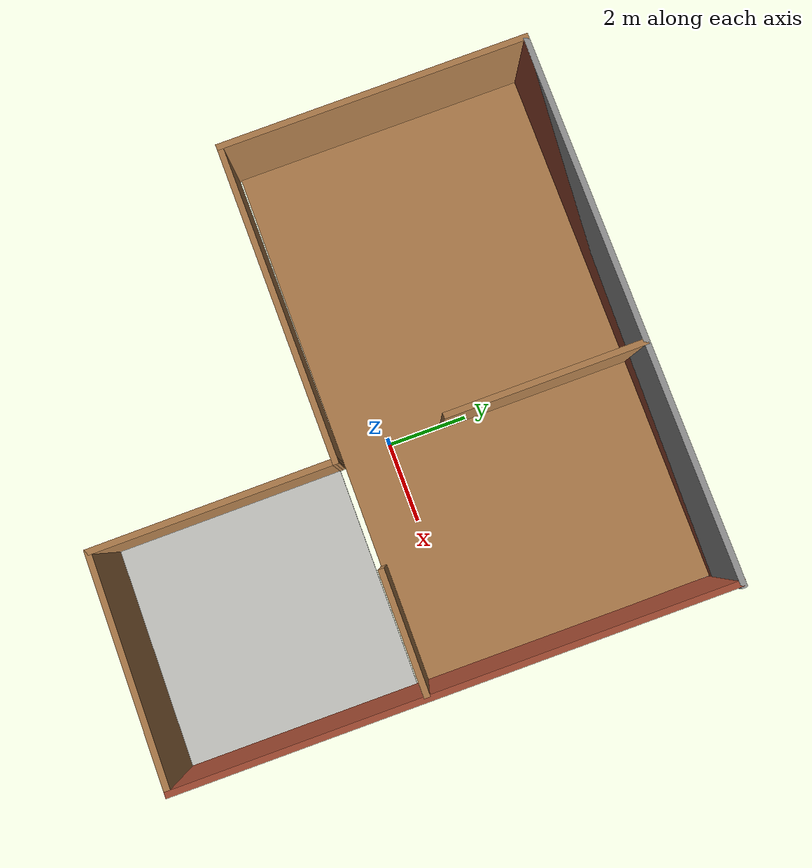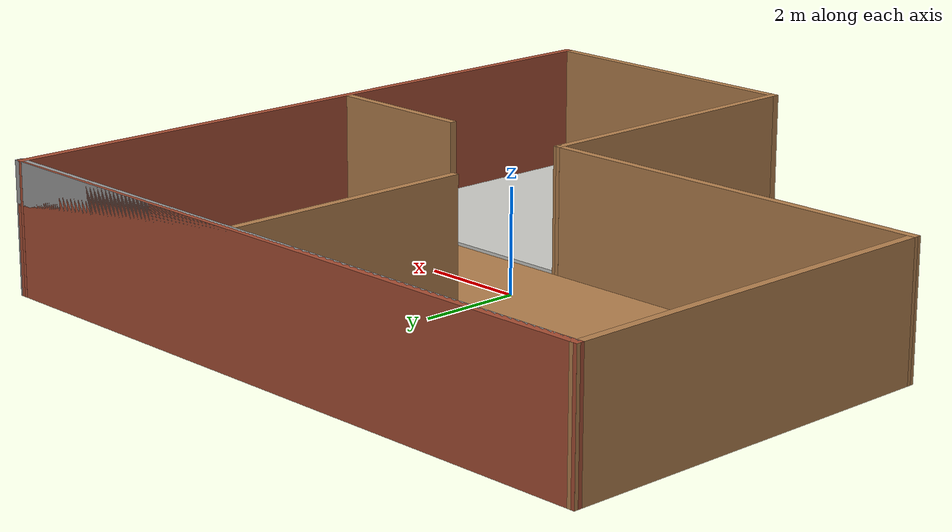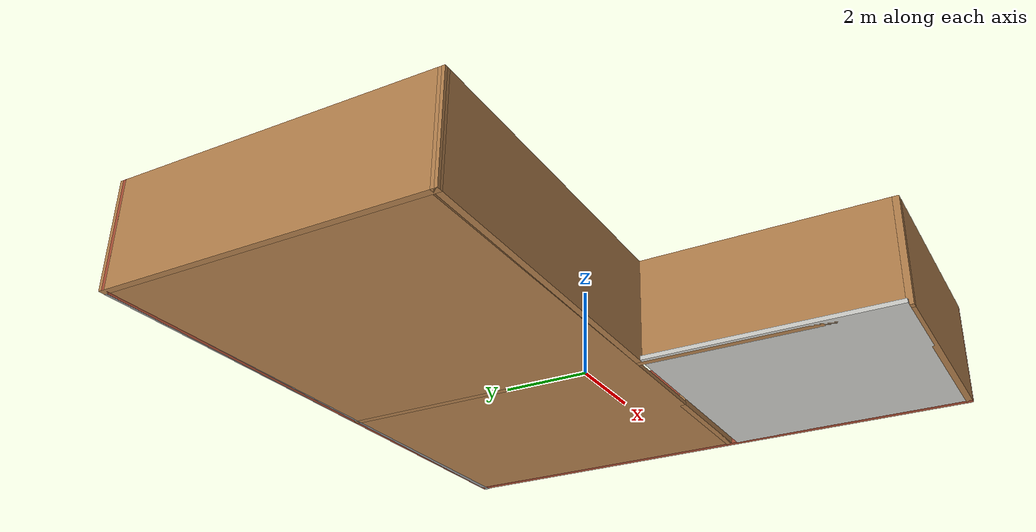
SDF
<?xml version='1.0'?>
<sdf version='1.6'>
  <model name='boring_room'>
    <pose frame=''>-0.949723 -0.43328 0 0 -0 0</pose>
    <link name='Wall_19'>
      <collision name='Wall_19_Collision'>
        <geometry>
          <box>
            <size>13.75 0.15 2.5</size>
          </box>
        </geometry>
        <pose frame=''>0 0 1.25 0 -0 0</pose>
      </collision>
      <visual name='Wall_19_Visual'>
        <pose frame=''>0 0 1.25 0 -0 0</pose>
        <geometry>
          <box>
            <size>13.75 0.15 2.5</size>
          </box>
        </geometry>
        <material>
          <script>
            <uri>file://media/materials/scripts/gazebo.material</uri>
            <name>Gazebo/Bricks</name>
          </script>
          <ambient>1 1 1 1</ambient>
        </material>
        <meta>
          <layer>0</layer>
        </meta>
      </visual>
      <pose frame=''>-0.020088 6.75954 0 0 -0 0</pose>
    </link>
    <link name='Wall_20'>
      <collision name='Wall_20_Collision'>
        <geometry>
          <box>
            <size>13.6696 0.15 2.5</size>
          </box>
        </geometry>
        <pose frame=''>0 0 1.25 0 -0 0</pose>
      </collision>
      <visual name='Wall_20_Visual'>
        <pose frame=''>0 0 1.25 0 -0 0</pose>
        <geometry>
          <box>
            <size>13.6696 0.15 2.5</size>
          </box>
        </geometry>
        <material>
          <script>
            <uri>file://media/materials/scripts/gazebo.material</uri>
            <name>Gazebo/Bricks</name>
          </script>
          <ambient>1 1 1 1</ambient>
        </material>
        <meta>
          <layer>0</layer>
        </meta>
      </visual>
      <pose frame=''>6.71923 0 0 0 0 -1.57977</pose>
    </link>
    <link name='Wall_21'>
      <collision name='Wall_21_Collision'>
        <geometry>
          <box>
            <size>5.75 0.15 2.5</size>
          </box>
        </geometry>
        <pose frame=''>0 0 1.25 0 -0 0</pose>
      </collision>
      <visual name='Wall_21_Visual'>
        <pose frame=''>0 0 1.25 0 -0 0</pose>
        <geometry>
          <box>
            <size>5.75 0.15 2.5</size>
          </box>
        </geometry>
        <material>
          <script>
            <uri>file://media/materials/scripts/gazebo.material</uri>
            <name>Gazebo/Wood</name>
          </script>
          <ambient>1 1 1 1</ambient>
        </material>
        <meta>
          <layer>0</layer>
        </meta>
      </visual>
      <pose frame=''>3.85854 -6.75954 0 0 -0 3.14159</pose>
    </link>
    <link name='Wall_22'>
      <collision name='Wall_22_Collision'>
        <geometry>
          <box>
            <size>6.04059 0.15 2.5</size>
          </box>
        </geometry>
        <pose frame=''>0 0 1.25 0 -0 0</pose>
      </collision>
      <visual name='Wall_22_Visual'>
        <pose frame=''>0 0 1.25 0 -0 0</pose>
        <geometry>
          <box>
            <size>6.04059 0.15 2.5</size>
          </box>
        </geometry>
        <material>
          <script>
            <uri>file://media/materials/scripts/gazebo.material</uri>
            <name>Gazebo/Wood</name>
          </script>
          <ambient>1 1 1 1</ambient>
        </material>
        <meta>
          <layer>0</layer>
        </meta>
      </visual>
      <pose frame=''>1.05855 -3.81432 0 0 -0 1.5708</pose>
    </link>
    <link name='Wall_23'>
      <collision name='Wall_23_Collision'>
        <geometry>
          <box>
            <size>8.0001 0.15 2.5</size>
          </box>
        </geometry>
        <pose frame=''>0 0 1.25 0 -0 0</pose>
      </collision>
      <visual name='Wall_23_Visual'>
        <pose frame=''>0 0 1.25 0 -0 0</pose>
        <geometry>
          <box>
            <size>8.0001 0.15 2.5</size>
          </box>
        </geometry>
        <material>
          <script>
            <uri>file://media/materials/scripts/gazebo.material</uri>
            <name>Gazebo/Wood</name>
          </script>
          <ambient>1 1 1 1</ambient>
        </material>
        <meta>
          <layer>0</layer>
        </meta>
      </visual>
      <pose frame=''>-2.86646 -0.889317 0 0 0 -3.13644</pose>
    </link>
    <link name='Wall_24'>
      <collision name='Wall_24_Collision'>
        <geometry>
          <box>
            <size>7.81914 0.15 2.5</size>
          </box>
        </geometry>
        <pose frame=''>0 0 1.25 0 -0 0</pose>
      </collision>
      <visual name='Wall_24_Visual'>
        <pose frame=''>0 0 1.25 0 -0 0</pose>
        <geometry>
          <box>
            <size>7.81914 0.15 2.5</size>
          </box>
        </geometry>
        <material>
          <script>
            <uri>file://media/materials/scripts/gazebo.material</uri>
            <name>Gazebo/Wood</name>
          </script>
          <ambient>1 1 1 1</ambient>
        </material>
        <meta>
          <layer>0</layer>
        </meta>
      </visual>
      <pose frame=''>-6.80577 2.925 0 0 -0 1.57453</pose>
    </link>
    <link name='Wall_26'>
      <collision name='Wall_26_Collision'>
        <geometry>
          <box>
            <size>5 0.15 2.5</size>
          </box>
        </geometry>
        <pose frame=''>0 0 1.25 0 -0 0</pose>
      </collision>
      <visual name='Wall_26_Visual'>
        <pose frame=''>0 0 1.25 0 -0 0</pose>
        <geometry>
          <box>
            <size>5 0.15 2.5</size>
          </box>
        </geometry>
        <material>
          <script>
            <uri>file://media/materials/scripts/gazebo.material</uri>
            <name>Gazebo/Wood</name>
          </script>
          <ambient>1 1 1 1</ambient>
        </material>
        <meta>
          <layer>0</layer>
        </meta>
      </visual>
      <pose frame=''>0.947383 4.29409 0 0 0 -1.5708</pose>
    </link>
    <link name='Wall_28'>
      <collision name='Wall_28_Collision'>
        <geometry>
          <box>
            <size>3 0.15 2.5</size>
          </box>
        </geometry>
        <pose frame=''>0 0 1.25 0 -0 0</pose>
      </collision>
      <visual name='Wall_28_Visual'>
        <pose frame=''>0 0 1.25 0 -0 0</pose>
        <geometry>
          <box>
            <size>3 0.15 2.5</size>
          </box>
        </geometry>
        <material>
          <script>
            <uri>file://media/materials/scripts/gazebo.material</uri>
            <name>Gazebo/Wood</name>
          </script>
          <ambient>1 1 1 1</ambient>
        </material>
        <meta>
          <layer>0</layer>
        </meta>
      </visual>
      <pose frame=''>5.18616 -0.724738 0 0 -0 3.14159</pose>
    </link>
    <link name='Wall_30'>
      <collision name='Wall_30_Collision'>
        <geometry>
          <box>
            <size>13.75 0.15 2.5</size>
          </box>
        </geometry>
        <pose frame=''>0 0 1.25 0 -0 0</pose>
      </collision>
      <visual name='Wall_30_Visual'>
        <pose frame=''>0 0 1.25 0 -0 0</pose>
        <geometry>
          <box>
            <size>13.75 0.15 2.5</size>
          </box>
        </geometry>
        <material>
          <script>
            <uri>file://media/materials/scripts/gazebo.material</uri>
            <name>Gazebo/Grey</name>
          </script>
          <ambient>1 1 1 1</ambient>
        </material>
        <meta>
          <layer>0</layer>
        </meta>
      </visual>
      <pose frame=''>0.020367 6.75954 0 0 -0 0</pose>
    </link>
    <link name='Wall_32'>
      <collision name='Wall_32_Collision'>
        <geometry>
          <box>
            <size>13.5 7.5 0.1</size>
          </box>
        </geometry>
        <pose frame=''>0 0 0.05 0 -0 0</pose>
      </collision>
      <visual name='Wall_32_Visual'>
        <pose frame=''>0 0 0.05 0 -0 0</pose>
        <geometry>
          <box>
            <size>13.5 7.5 0.1</size>
          </box>
        </geometry>
        <material>
          <script>
            <uri>file://media/materials/scripts/gazebo.material</uri>
            <name>Gazebo/Wood</name>
          </script>
          <ambient>1 1 1 1</ambient>
        </material>
        <meta>
          <layer>0</layer>
        </meta>
      </visual>
      <pose frame=''>-0.064541 2.95687 0 0 -0 0</pose>
    </link>
    <link name='Wall_39'>
      <collision name='Wall_39_Collision'>
        <geometry>
          <box>
            <size>5.81 5.8 0.1</size>
          </box>
        </geometry>
        <pose frame=''>0 0 0.05 0 -0 0</pose>
      </collision>
      <visual name='Wall_39_Visual'>
        <pose frame=''>0 0 0.05 0 -0 0</pose>
        <geometry>
          <box>
            <size>5.81 5.8 0.1</size>
          </box>
        </geometry>
        <material>
          <script>
            <uri>file://media/materials/scripts/gazebo.material</uri>
            <name>Gazebo/CeilingTiled</name>
          </script>
          <ambient>1 1 1 1</ambient>
        </material>
        <meta>
          <layer>0</layer>
        </meta>
      </visual>
      <pose frame=''>3.78472 -3.84072 0 0 -0 0</pose>
    </link>
    <static>1</static>
  </model>
</sdf>
